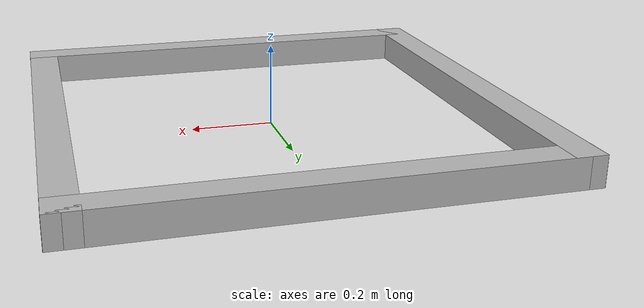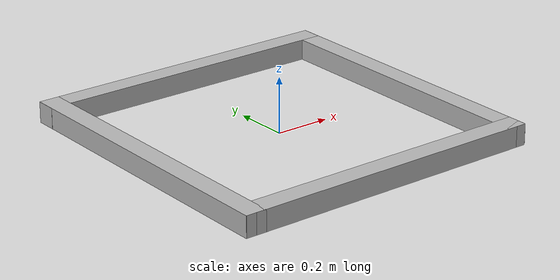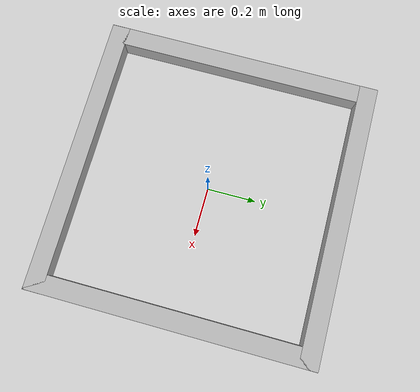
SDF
<?xml version='1.0'?>
<sdf version='1.4'>
  <model name="sphere_arena">
    <static>true</static>

    <link name="south_wall">
      <pose>0 -0.5375 0.0375 0 0 0</pose>

      <collision name='collision'>
        <geometry>
          <box>
            <size>1.15 0.075 0.075</size>
          </box>
        </geometry>
      </collision>

      <visual name='visual'>
        <geometry>
          <box>
            <size>1.15 0.075 0.075</size>
          </box>
        </geometry>
      </visual>
    </link>

    <link name="north_wall">
      <pose>0 0.5375 0.0375 0 0 0</pose>

      <collision name='collision'>
        <geometry>
          <box>
            <size>1.15 0.075 0.075</size>
          </box>
        </geometry>
      </collision>

      <visual name='visual'>
        <geometry>
          <box>
            <size>1.15 0.075 0.075</size>
          </box>
        </geometry>
      </visual>
    </link>

    <link name="west_wall">
      <pose>-0.5375 0 0.0375 0 0 1.57</pose>

      <collision name='collision'>
        <geometry>
          <box>
            <size>1.15 0.075 0.075</size>
          </box>
        </geometry>
      </collision>

      <visual name='visual'>
        <geometry>
          <box>
            <size>1.15 0.075 0.075</size>
          </box>
        </geometry>
      </visual>
    </link>

    <link name="east_wall">
      <pose>0.5375 0 0.0375 0 0 1.57</pose>

      <collision name='collision'>
        <geometry>
          <box>
            <size>1.15 0.075 0.075</size>
          </box>
        </geometry>
      </collision>

      <visual name='visual'>
        <geometry>
          <box>
            <size>1.15 0.075 0.075</size>
          </box>
        </geometry>
      </visual>
    </link>

  </model>
</sdf>
